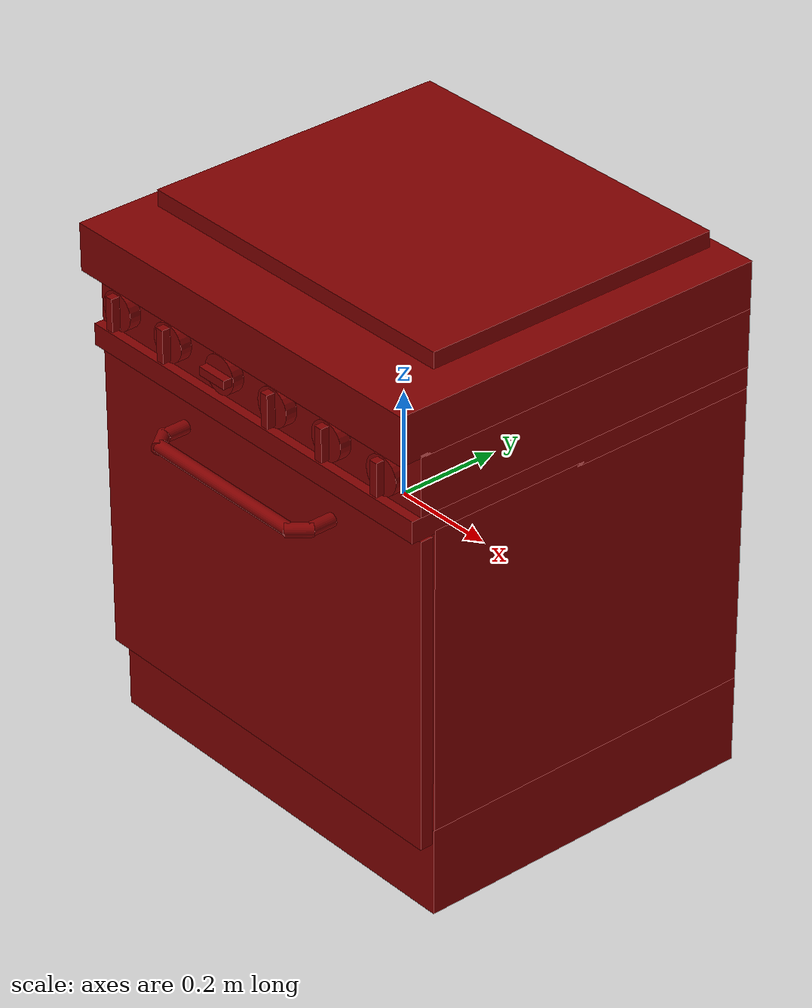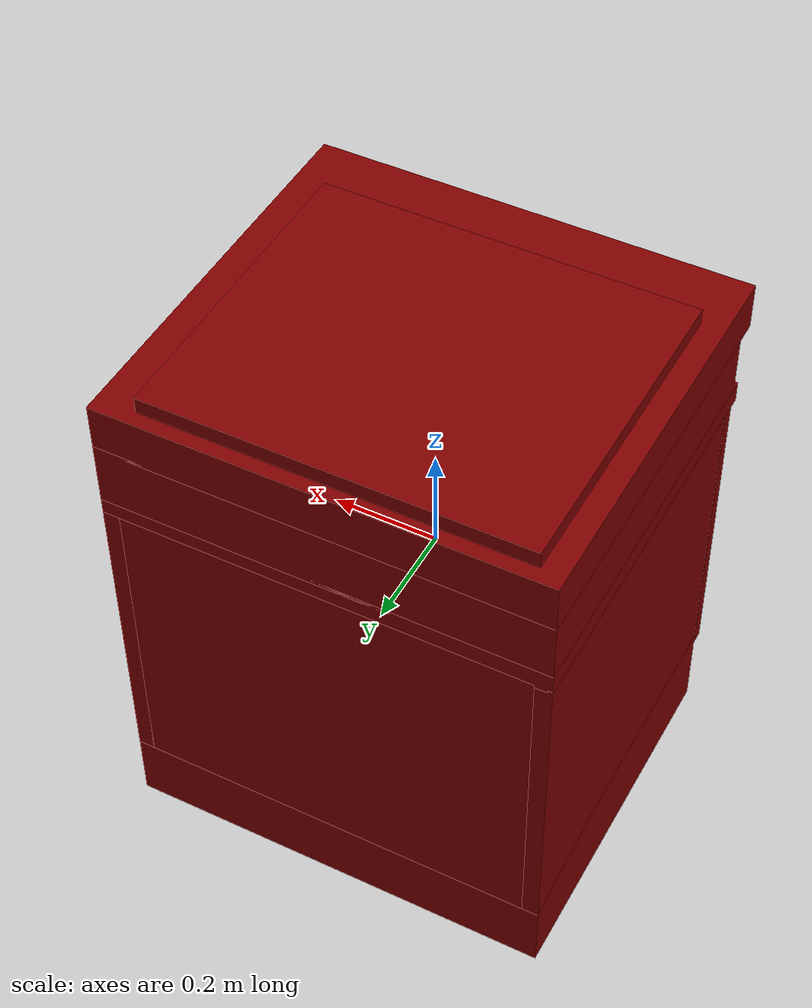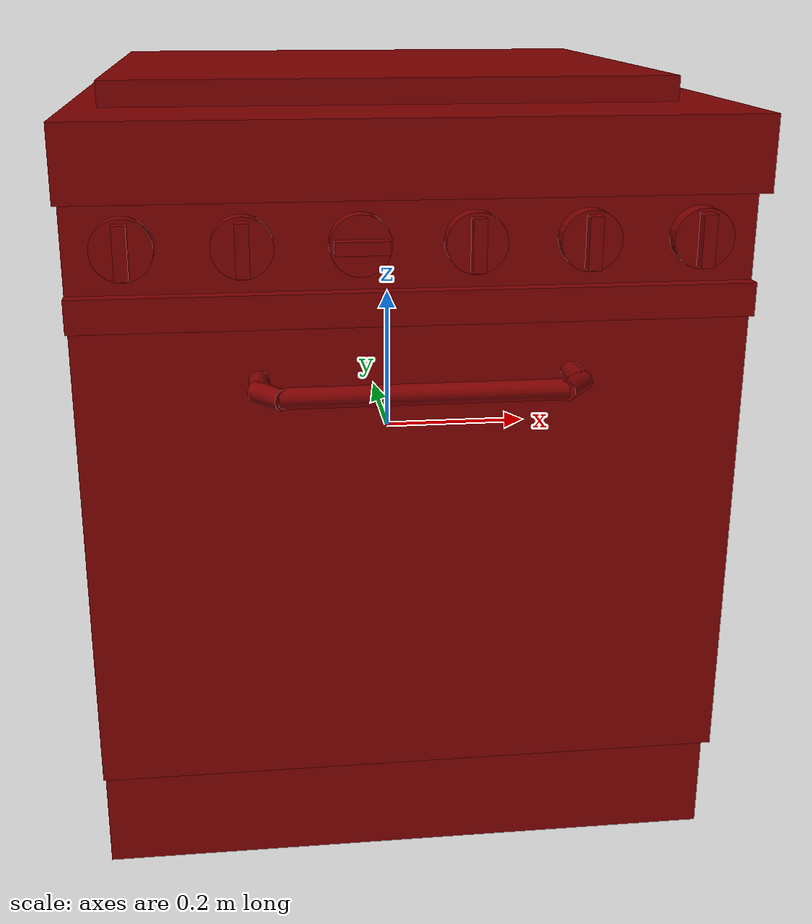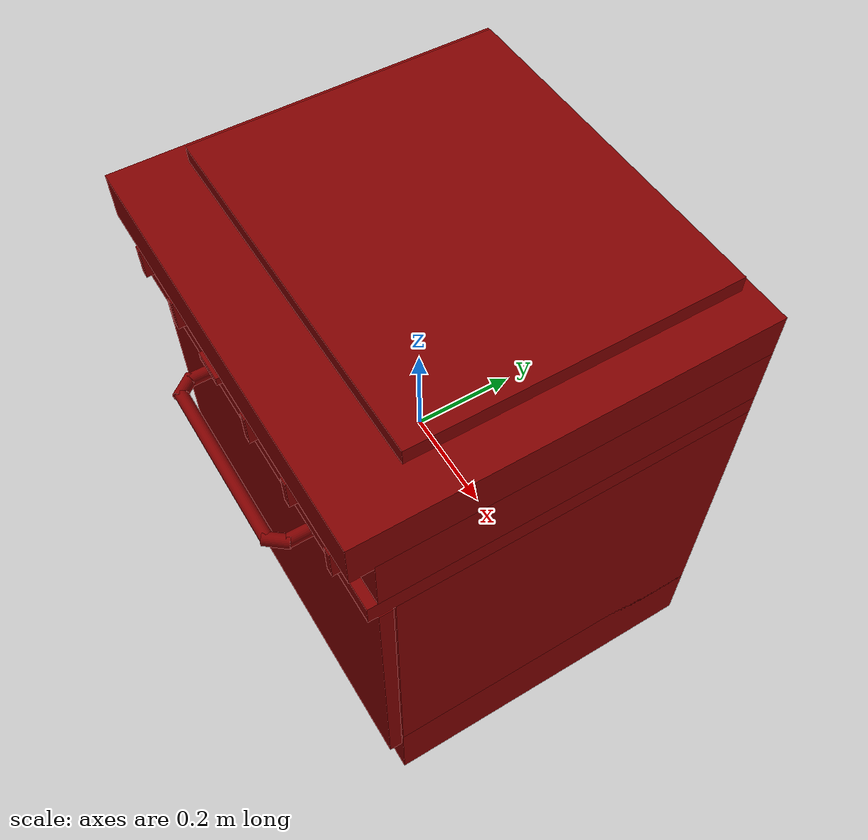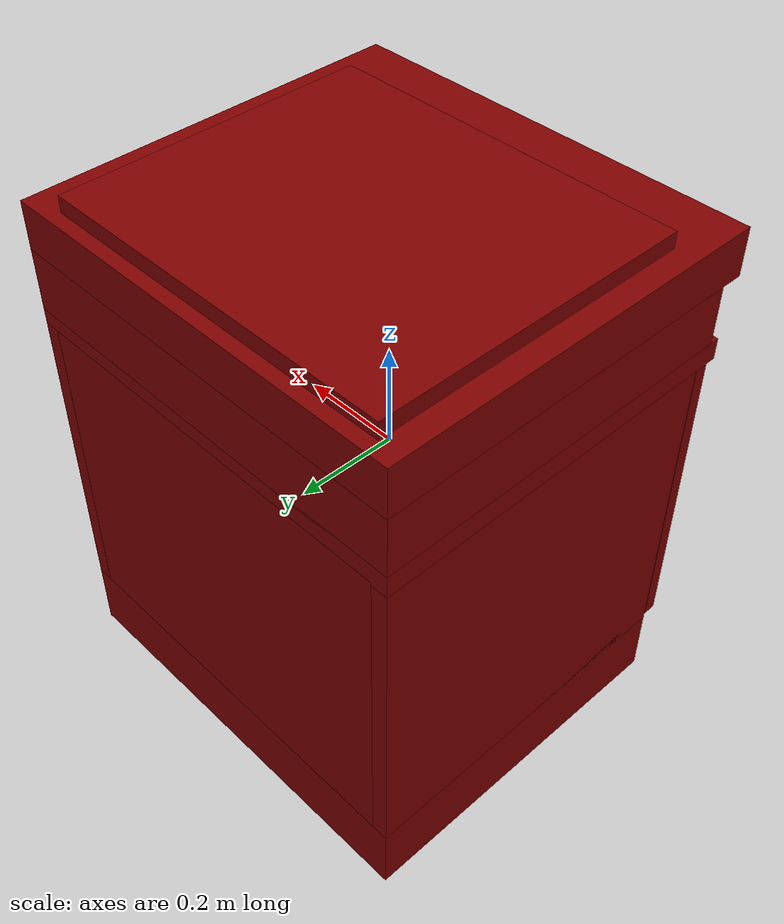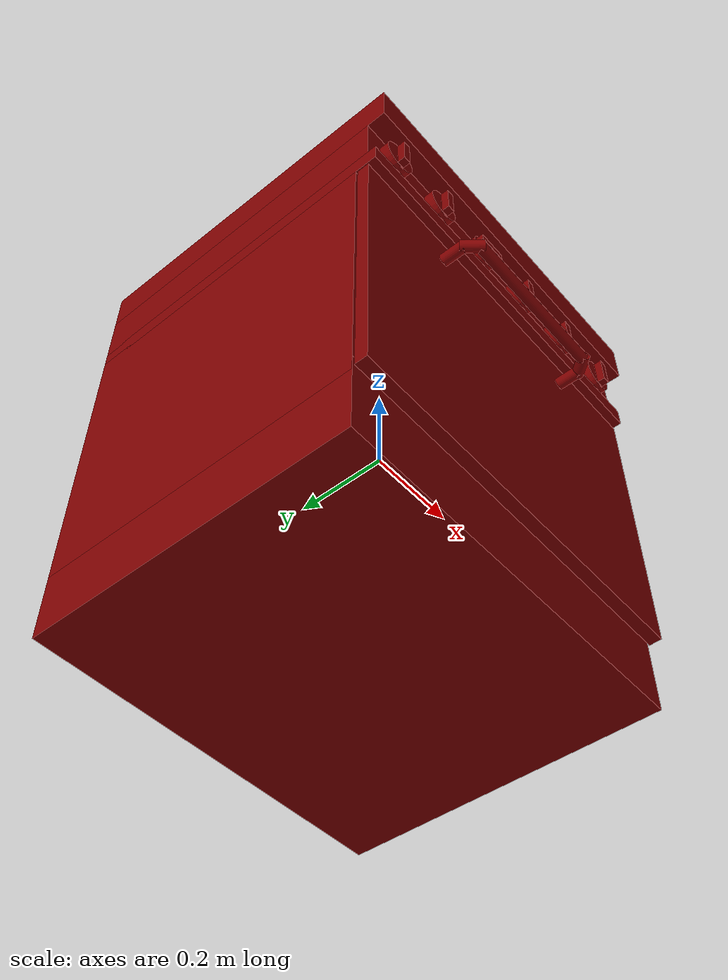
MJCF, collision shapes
<?xml version='1.0' encoding='UTF-8'?>
<mujoco model="model">
  <option timestep="0.002" gravity="0.0 0.0 -9.81"/>
  <compiler angle="radian"/>
  <asset>
    <mesh file="visuals/door.obj" name="door_vis"/>
    <mesh file="visuals/door_Clear.obj" name="door_Clear_vis"/>
    <mesh file="visuals/knob_front_left.obj" name="knob_front_left_vis"/>
    <mesh file="visuals/knob_front_right.obj" name="knob_front_right_vis"/>
    <mesh file="visuals/knob_rear_left.obj" name="knob_rear_left_vis"/>
    <mesh file="visuals/knob_rear_right.obj" name="knob_rear_right_vis"/>
    <mesh file="visuals/knob_temp.obj" name="knob_temp_vis"/>
    <mesh file="visuals/knob_time.obj" name="knob_time_vis"/>
    <mesh file="visuals/rack0.obj" name="rack0_vis"/>
    <mesh file="visuals/Body001.obj" name="Body001_vis"/>
    <texture file="visuals/T_BC001.png" name="Body001_material" type="2d"/>
    <material name="Body001_material" rgba="1 1 1 1.0" texture="Body001_material" shininess="0.1" specular="3"/>
    <texture file="visuals/T_BC001.png" name="door_material" type="2d"/>
    <material name="door_material" rgba="1 1 1 1.0" texture="door_material" shininess="0.11" specular="3"/>
    <material name="door_Clear_material" rgba="0.1424894481897354 0.1424894481897354 0.1424894481897354 0.8" shininess="0.141421377658844" specular="0.3103448502657381"/>
    <texture file="visuals/T_BC001.png" name="knob_front_left_material" type="2d"/>
    <material name="knob_front_left_material" rgba="1 1 1 1.0" texture="knob_front_left_material" shininess="0.141421377658844" specular="0.3103448502657381"/>
    <texture file="visuals/T_BC001.png" name="knob_front_right_material" type="2d"/>
    <material name="knob_front_right_material" rgba="1 1 1 1.0" texture="knob_front_right_material" shininess="0.141421377658844" specular="0.3103448502657381"/>
    <texture file="visuals/T_BC001.png" name="knob_rear_left_material" type="2d"/>
    <material name="knob_rear_left_material" rgba="1 1 1 1.0" texture="knob_rear_left_material" shininess="0.141421377658844" specular="0.3103448502657381"/>
    <texture file="visuals/T_BC001.png" name="knob_rear_right_material" type="2d"/>
    <material name="knob_rear_right_material" rgba="1 1 1 1.0" texture="knob_rear_right_material" shininess="0.141421377658844" specular="0.3103448502657381"/>
    <texture file="visuals/T_BC001.png" name="knob_temp_material" type="2d"/>
    <material name="knob_temp_material" rgba="1 1 1 1.0" texture="knob_temp_material" shininess="0.141421377658844" specular="0.3103448502657381"/>
    <texture file="visuals/T_BC001.png" name="knob_time_material" type="2d"/>
    <material name="knob_time_material" rgba="1 1 1 1.0" texture="knob_time_material" shininess="0.141421377658844" specular="0.3103448502657381"/>
    <texture file="visuals/T_BC001.png" name="rack0_material" type="2d"/>
    <material name="rack0_material" rgba="1 1 1 1.0" texture="rack0_material" shininess="0.141421377658844" specular="0.3103448502657381"/>
  </asset>
  <default>
    <default class="visual">
      <geom conaffinity="0" contype="0" group="1" type="mesh"/>
    </default>
    <default class="collision">
      <geom group="0" rgba="0.5 0 0 0.5"/>
    </default>
    <default class="spawn">
      <geom group="0" rgba="1 1 1 0.5" contype="0" conaffinity="0"/>
      <site group="0" rgba="1 1 1 0.5"/>
    </default>
    <default class="region">
      <geom group="1" conaffinity="0" contype="0" rgba="0 1 0 0"/>
    </default>
  </default>
  <worldbody>
    <body>
      <body name="object">
        <geom mesh="Body001_vis" type="mesh" solimp="0.998 0.998 0.001" solref="0.001 1" friction="0.95 0.3 0.1" class="visual" material="Body001_material"/>
        <geom class="collision" type="box" pos="-0.00000005 0.02062324 0.43270152" size="0.4064030051231384 0.37509748339653015 0.044920504093170166" quat="1.0 0.0 0.0 0.0"/>
        <geom class="collision" type="box" pos="0.00000001 0.03184070 0.25730138" size="0.4064030051231384 0.3638799786567688 0.02052617073059082" quat="1.0 0.0 0.0 0.0"/>
        <geom class="collision" type="box" pos="0.00000005 0.04105508 0.33218851" size="0.40640291571617126 0.3546656370162964 0.06058862805366516" quat="1.0 0.0 0.0 0.0"/>
        <geom class="collision" type="box" pos="-0.39069709 0.05554236 -0.06576237" size="0.015705807134509087 0.34017837047576904 0.3078221380710602" quat="1.0 0.0 0.0 0.0"/>
        <geom class="collision" type="box" pos="0.00001854 0.35175093 -0.06576237" size="0.3750259578227997 0.04396989196538925 0.3078221380710602" quat="1.0 0.0 0.0 0.0"/>
        <geom class="collision" type="box" pos="0.39097399 0.05554253 -0.06576237" size="0.015428900718688965 0.34017854928970337 0.3078221380710602" quat="1.0 0.0 0.0 0.0"/>
        <geom class="collision" type="box" pos="0.00019955 0.05458129 0.22196851" size="0.37412795424461365 0.33978936076164246 0.018022269010543823" quat="1.0 0.0 0.0 0.0"/>
        <geom class="collision" type="box" pos="0.00000001 0.05525632 -0.42596490" size="0.40640291571617126 0.34046438336372375 0.08457460254430771" quat="1.0 0.0 0.0 0.0"/>
        <geom class="collision" type="box" pos="-0.01648928 0.07382467 0.49516861" size="0.34780675172805786 0.29731225967407227 0.015370605513453484" quat="1.0 0.0 0.0 0.0"/>
        <body name="door">
          <joint axis="1.0 0.0 0.0" pos="-0.00007106 -0.28369857 -0.36892451" limited="true" name="door_joint" range="0.0 1.5707963267948966" type="hinge" damping="1" frictionloss="1" armature=".01" stiffness="5" springref="-4"/>
          <geom mesh="door_vis" type="mesh" solimp="0.998 0.998 0.001" solref="0.001 1" friction="0.95 0.3 0.1" class="visual" material="door_material"/>
          <geom class="collision" type="box" pos="0.00065027 -0.30138368 -0.06656973" size="0.4061472713947296 0.012706891633570194 0.29955747723579407" quat="1.0 0.0 0.0 0.0" name="door_main"/>
          <geom class="collision" type="cylinder" pos="0.00009374 -0.38613082 0.17038037" size="0.012389549054205418 0.16732807457447052" quat="0.7071068286895752 -0.0 0.7071067690849304 0.0" name="door_handle_main"/>
          <geom class="collision" type="cylinder" pos="-0.18780908 -0.33848987 0.17038036" size="0.012389549054205418 0.024187367409467697" quat="0.5000000596046448 -0.5 0.5 0.4999999701976776"/>
          <geom class="collision" type="cylinder" pos="-0.17741998 -0.37410963 0.17038036" size="0.012389549054205418 0.024187367409467697" quat="0.3057507872581482 -0.6375864744186401 0.3057507872581482 0.6375864148139954"/>
          <geom class="collision" type="cylinder" pos="0.17821395 -0.37410966 0.17038039" size="0.012389549054205418 0.024187367409467697" quat="0.3057507872581482 -0.6375864744186401 -0.3057507872581482 -0.6375864148139954"/>
          <geom class="collision" type="cylinder" pos="0.18860306 -0.33848990 0.17038039" size="0.012389549054205418 0.024187367409467697" quat="0.5000000596046448 -0.5 -0.5 -0.4999999701976776"/>
          <geom class="collision" type="box" pos="0.00020720 -0.29783029 -0.06904388" size="0.3068065941333771 0.011482787318527699 0.20272661745548248" quat="1.0 0.0 0.0 0.0"/>
          <body name="door_Clear">
            <geom mesh="door_Clear_vis" type="mesh" solimp="0.998 0.998 0.001" solref="0.001 1" friction="0.95 0.3 0.1" class="visual" material="door_Clear_material"/>
            <geom class="collision" type="box" pos="0.00020720 -0.29783029 -0.06904388" size="0.3068065941333771 0.011482787318527699 0.20272661745548248" quat="1.0 0.0 0.0 0.0"/>
          </body>
        </body>
        <body name="knob_front_left">
          <joint axis="0.0 -1.0 0.0" pos="-0.33723536 -0.33121935 0.33306770" limited="true" name="knob_front_left_joint" range="0.0 3.141592653589793" type="hinge" damping="0.05" armature="1" frictionloss="0.75"/>
          <geom mesh="knob_front_left_vis" type="mesh" solimp="0.998 0.998 0.001" solref="0.001 1" friction="0.95 0.3 0.1" class="visual" material="knob_front_left_material"/>
          <geom class="collision" type="cylinder" pos="-0.33723536 -0.32528163 0.33306770" size="0.036232754588127136 0.010816382244229317" quat="0.7071068286895752 0.7071067690849304 0.0 0.0" friction="100 0.5 0.01"/>
          <geom class="collision" type="box" pos="-0.33723536 -0.34431649 0.33286898" size="0.008053257130086422 0.008392240852117538 0.031496912240982056" quat="1.0 0.0 0.0 0.0" name="knob_front_left_main" friction="100 0.5 0.01"/>
        </body>
        <body name="knob_front_right">
          <joint axis="0.0 -1.0 0.0" pos="0.33626068 -0.33121935 0.33306770" limited="true" name="knob_front_right_joint" range="0.0 3.141592653589793" type="hinge" damping="0.05" armature="1" frictionloss="0.75"/>
          <geom mesh="knob_front_right_vis" type="mesh" solimp="0.998 0.998 0.001" solref="0.001 1" friction="0.95 0.3 0.1" class="visual" material="knob_front_right_material"/>
          <geom class="collision" type="cylinder" pos="0.33629066 -0.32528163 0.33306770" size="0.036232754588127136 0.010816382244229317" quat="0.7071068286895752 0.7071067690849304 0.0 0.0" friction="100 0.5 0.01"/>
          <geom class="collision" type="box" pos="0.33629066 -0.34431649 0.33286898" size="0.008053257130086422 0.008392240852117538 0.031496912240982056" quat="1.0 0.0 0.0 0.0" name="knob_front_right_main" friction="100 0.5 0.01"/>
        </body>
        <body name="knob_rear_left">
          <joint axis="0.0 -1.0 0.0" pos="-0.20259701 -0.33121935 0.33306770" limited="true" name="knob_rear_left_joint" range="0.0 3.141592653589793" type="hinge" damping="0.05" armature="1" frictionloss="0.75"/>
          <geom mesh="knob_rear_left_vis" type="mesh" solimp="0.998 0.998 0.001" solref="0.001 1" friction="0.95 0.3 0.1" class="visual" material="knob_rear_left_material"/>
          <geom class="collision" type="cylinder" pos="-0.20253016 -0.32528163 0.33306770" size="0.036232754588127136 0.010816382244229317" quat="0.7071068286895752 0.7071067690849304 0.0 0.0" friction="100 0.5 0.01"/>
          <geom class="collision" type="box" pos="-0.20253016 -0.34431649 0.33286898" size="0.008053257130086422 0.008392240852117538 0.031496912240982056" quat="1.0 0.0 0.0 0.0" name="knob_rear_left_main" friction="100 0.5 0.01"/>
        </body>
        <body name="knob_rear_right">
          <joint axis="0.0 -1.0 0.0" pos="0.20172434 -0.33121935 0.33306770" limited="true" name="knob_rear_right_joint" range="0.0 3.141592653589793" type="hinge" damping="0.05" armature="1" frictionloss="0.75"/>
          <geom mesh="knob_rear_right_vis" type="mesh" solimp="0.998 0.998 0.001" solref="0.001 1" friction="0.95 0.3 0.1" class="visual" material="knob_rear_right_material"/>
          <geom class="collision" type="cylinder" pos="0.20181338 -0.32528163 0.33306770" size="0.036232754588127136 0.010816382244229317" quat="0.7071068286895752 0.7071067690849304 0.0 0.0" friction="100 0.5 0.01"/>
          <geom class="collision" type="box" pos="0.20181338 -0.34431649 0.33286898" size="0.008053257130086422 0.008392240852117538 0.031496912240982056" quat="1.0 0.0 0.0 0.0" name="knob_rear_right_main" friction="100 0.5 0.01"/>
        </body>
        <body name="knob_temp">
          <joint axis="0.0 1.0 0.0" pos="0.06694102 -0.33121932 0.33303465" limited="true" name="knob_temp_joint" range="0.0 5.585053606381854" type="hinge" damping="0.05" armature="1" frictionloss="0.75"/>
          <geom mesh="knob_temp_vis" type="mesh" solimp="0.998 0.998 0.001" solref="0.001 1" friction="0.95 0.3 0.1" class="visual" material="knob_temp_material"/>
          <geom class="collision" type="cylinder" pos="0.06694870 -0.32528163 0.33306770" size="0.036232754588127136 0.010816382244229317" quat="0.7071068286895752 0.7071067690849304 0.0 0.0" friction="100 0.5 0.01"/>
          <geom class="collision" type="box" pos="0.06694870 -0.34431649 0.33286898" size="0.008053257130086422 0.008392240852117538 0.031496912240982056" quat="1.0 0.0 0.0 0.0" name="knob_temp_main" friction="100 0.5 0.01"/>
        </body>
        <body name="knob_time">
          <joint axis="0.0 1.0 0.0" pos="-0.06758110 -0.33121932 0.33302956" limited="true" name="knob_time_joint" range="0.0 5.270894341022875" type="hinge" damping="0.05" armature="1" frictionloss="0.75"/>
          <geom mesh="knob_time_vis" type="mesh" solimp="0.998 0.998 0.001" solref="0.001 1" friction="0.95 0.3 0.1" class="visual" material="knob_time_material"/>
          <geom class="collision" type="cylinder" pos="-0.06748467 -0.32528163 0.33306770" size="0.036232754588127136 0.010816382244229317" quat="0.7071068286895752 0.7071067690849304 0.0 0.0" friction="100 0.5 0.01"/>
          <geom class="collision" type="box" pos="-0.06728593 -0.34431649 0.33306770" size="0.008053257130086422 0.008392240852117538 0.031496912240982056" quat="0.7071068286895752 0.0 -0.7071067690849304 0.0" name="knob_time_main" friction="100 0.5 0.01"/>
        </body>
        <body name="rack0">
          <geom class="region" name="reg_rack0" type="box" pos="0.00023929500000000048 0.005553529999999987 0.067807195" size="0.363301455 0.25515925 0.132993865"/>
          <joint axis="0.0 -1.0 0.0" pos="0.00111619 0.00631059 -0.06915268" limited="true" name="rack0_joint" range="0.0 0.5" type="slide" damping="1" frictionloss="1" armature=".01" stiffness="0.05"/>
          <geom mesh="rack0_vis" type="mesh" solimp="0.998 0.998 0.001" solref="0.001 1" friction="0.95 0.3 0.1" class="visual" material="rack0_material"/>
          <geom class="collision" type="box" pos="0.00111619 0.00631059 -0.06988143" size="0.36968109011650085 0.2670382261276245 0.003496273187920451" quat="1.0 0.0 0.0 0.0"/>
        </body>
        <geom class="region" name="reg_int" type="box" pos="0.000593215000000008 0.013190630000000009 -0.06907142499999999" size="0.367290035 0.29061982 0.26795260499999995"/>
        <site type="cylinder" rgba="0.3 0.4 1 0.5" size="0.07108497619628906 0.011468073353171349" pos="-0.21486042 0.22249008 0.48974489" name="burner_on_rear_left"/>
        <site type="cylinder" rgba="0.3 0.4 1 0.5" size="0.07083646208047867 0.011427980847656727" pos="-0.21522538 -0.07446056 0.48974489" name="burner_on_front_left"/>
        <site type="cylinder" rgba="0.3 0.4 1 0.5" size="0.07112635672092438 0.011474749073386192" pos="0.18223746 -0.07465717 0.48974489" name="burner_on_front_right"/>
        <site type="cylinder" rgba="0.3 0.4 1 0.5" size="0.07073274999856949 0.011411248706281185" pos="0.18327981 0.22328951 0.48974489" name="burner_on_rear_right"/>
        <site type="cylinder" rgba="0.5 0 0 0" size="0.07108497619628906 4.999999873689376e-05" pos="-0.21486042 0.22249008 0.51058923" name="burner_rear_left_place_site"/>
        <site type="cylinder" rgba="0.5 0 0 0" size="0.07083646208047867 4.999999873689376e-05" pos="-0.21522538 -0.07446056 0.51058923" name="burner_front_left_place_site"/>
        <site type="cylinder" rgba="0.5 0 0 0" size="0.07112635672092438 4.999999873689376e-05" pos="0.18223746 -0.07465717 0.51058923" name="burner_front_right_place_site"/>
        <site type="cylinder" rgba="0.5 0 0 0" size="0.07073274999856949 4.999999873689376e-05" pos="0.18327981 0.22328951 0.51058923" name="burner_rear_right_place_site"/>
        <geom class="region" name="reg_main" type="box" pos="0.0 0.04127106999999999 -0.016458865000000017" size="0.40740295 0.35544981 0.495080815"/>
      </body>
    </body>
  </worldbody>
  <actuator>
    <motor name="door_joint_actuator" joint="door_joint" gear="50"/>
    <motor name="knob_front_left_joint_actuator" joint="knob_front_left_joint" gear="50"/>
    <motor name="knob_front_right_joint_actuator" joint="knob_front_right_joint" gear="50"/>
    <motor name="knob_rear_left_joint_actuator" joint="knob_rear_left_joint" gear="50"/>
    <motor name="knob_rear_right_joint_actuator" joint="knob_rear_right_joint" gear="50"/>
    <motor name="knob_temp_joint_actuator" joint="knob_temp_joint" gear="50"/>
    <motor name="knob_time_joint_actuator" joint="knob_time_joint" gear="50"/>
    <motor name="rack0_joint_actuator" joint="rack0_joint" gear="50"/>
  </actuator>
</mujoco>
